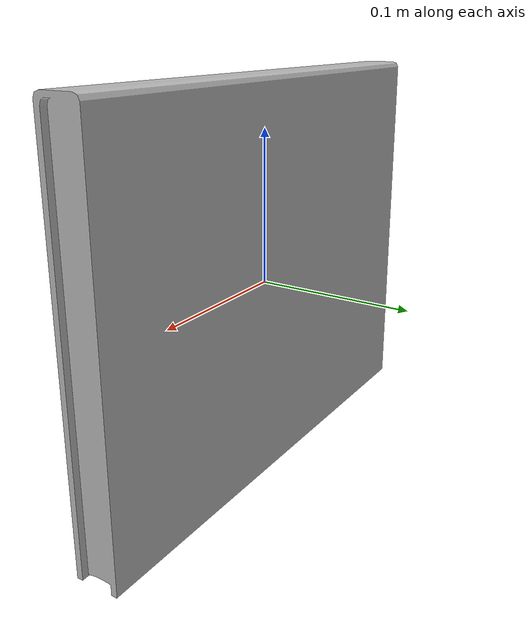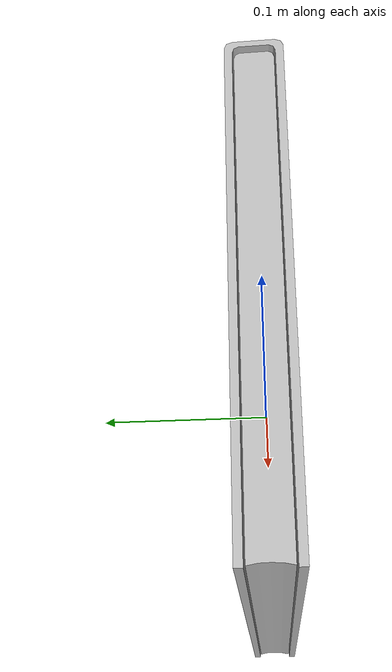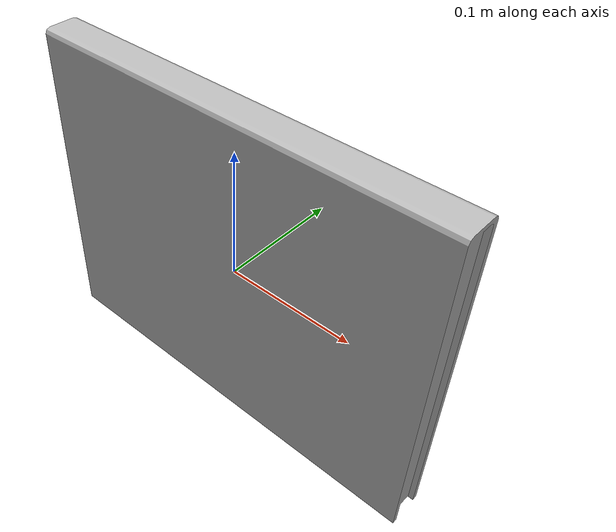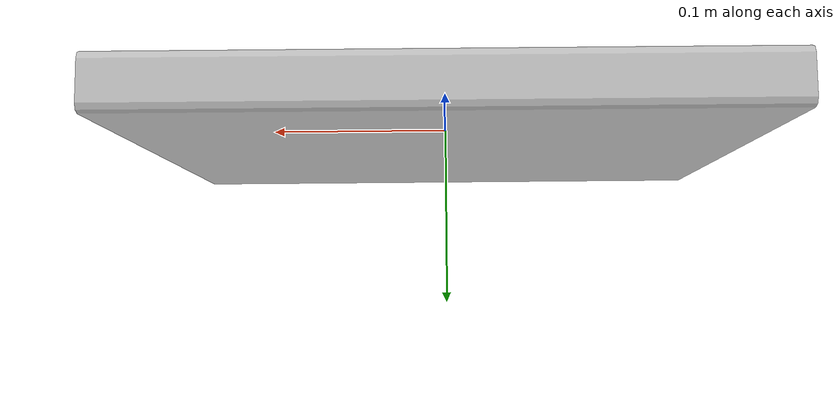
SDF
<?xml version="1.0" ?>
<sdf version="1.4">
  <model name="shelf1_artbook_utrillo">
    <link name="body">
      <pose>0 0 0 0 0 0</pose>
      <inertial>
        <pose>  -0.000612   0.000000   0.005754 0 0 0</pose>
        <mass>0.5</mass>
        <inertia>
          <ixx>0.01</ixx>
          <ixy>0</ixy>
          <ixz>0</ixz>
          <iyy>0.01</iyy>
          <iyz>0</iyz>
          <izz>0.01</izz>
        </inertia>
      </inertial>
      <collision name="collision">
        <pose>  -0.000612   0.000000   0.005754 0 0 0</pose>
        <geometry>
          <box><size>0.333000 0.028860 0.259000</size></box>
        </geometry>
      </collision>
      <visual name="visual">
        <geometry>
          <mesh>
            <uri>model://bookshelf/shelf1_items/artbook_utrillo/artbook_utrillo.dae</uri>
          </mesh>
        </geometry>
      </visual>
    </link>
  </model>
</sdf>
